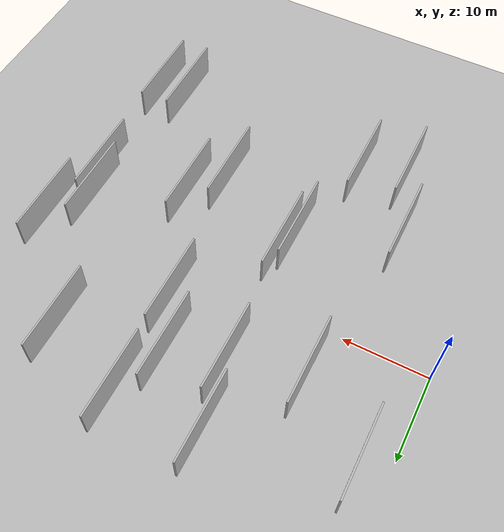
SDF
<?xml version="1.0" encoding="utf-8"?>

<sdf version="1.6">

   <world name="default">

      <gui fullscreen="0">

         <camera name="user_camera">

            <pose>-15 0 4.57585 0 0 0</pose>

            <view_controller>orbit</view_controller>

         </camera>

      </gui>

      <scene>

         <sky>

           <clouds>

             <speed>12</speed>

           </clouds>

         </sky>

         <ambient>0.4 0.4 0.4 1</ambient>

         <background>0.7 0.7 0.7 1</background>

         <shadows>1</shadows>

      </scene>

      <gravity>0 0 -9.8066</gravity>

      <magnetic_field>6e-06 2.3e-05 -4.2e-05</magnetic_field>

      <physics default="0" name="default_physics" type="ode">

         <ode>

            <solver>

               <type>quick</type>

               <iters>10</iters>

               <sor>1.0</sor>

               <use_dynamic_moi_rescaling>0</use_dynamic_moi_rescaling>

            </solver>

            <constraints>

               <cfm>0</cfm>

               <erp>0.2</erp>

               <contact_max_correcting_vel>100</contact_max_correcting_vel>

               <contact_surface_layer>0.001</contact_surface_layer>

            </constraints>

         </ode>

         <max_step_size>0.004</max_step_size>

         <real_time_factor>1</real_time_factor>

         <real_time_update_rate>250</real_time_update_rate>

      </physics>

      <light name="sun" type="directional">

         <cast_shadows>1</cast_shadows>

         <pose>0 0 10 0 0 0</pose>

         <diffuse>0.8 0.8 0.8 1</diffuse>

         <specular>0.2 0.2 0.2 1</specular>

         <attenuation>

            <range>1000</range>

            <constant>0.9</constant>

            <linear>0.01</linear>

            <quadratic>0.001</quadratic>

         </attenuation>

         <direction>-0.5 0.1 -0.9</direction>

      </light>

      <include>

         <name>ground_plane_1</name>

         <uri>model://HANNAS_ground_plane</uri>

         <pose>0 0 0  0 0 0</pose>

      </include>

      <include>

         <name>ground_plane_2</name>

         <uri>model://HANNAS_ground_plane</uri>

         <pose>100 0 0  0 0 0</pose>

      </include>

      <model name="HANNAS_wall_1">

         <static>1</static>

         <pose frame="">19.9486 -4.7746 5.0 0.000000 0.000000 1.570796</pose>

         <link name="link">

            <pose frame="">0 0 2.00 0 0 0</pose>

            <collision name="collision">

               <geometry>

                  <box>

                     <size>10.00 0.2 4.00</size>

                  </box>

               </geometry>

               <max_contacts>10</max_contacts>

               <surface>

                  <contact>

                     <ode/>

                  </contact>

                  <bounce/>

                  <friction>

                     <torsional>

                        <ode/>

                     </torsional>

                     <ode/>

                  </friction>

               </surface>

            </collision>

            <visual name="visual">

               <cast_shadows>0</cast_shadows>

               <geometry>

                  <box>

                     <size>10.00 0.2 4.00</size>

                  </box>

               </geometry>

               <material>

                  <script>

                     <uri>model://HANNAS_wall/materials/scripts</uri>

                     <uri>model://HANNAS_wall/materials/textures</uri>

                     <name>vrc/HANNAS_wall</name>

                  </script>

               </material>

            </visual>

            <self_collide>0</self_collide>

            <enable_wind>0</enable_wind>

            <kinematic>0</kinematic>

         </link>

      </model>

      <model name="HANNAS_wall_2">

         <static>1</static>

         <pose frame="">18.8930 10.1252 5.0 0.000000 0.000000 1.570796</pose>

         <link name="link">

            <pose frame="">0 0 2.00 0 0 0</pose>

            <collision name="collision">

               <geometry>

                  <box>

                     <size>10.00 0.2 4.00</size>

                  </box>

               </geometry>

               <max_contacts>10</max_contacts>

               <surface>

                  <contact>

                     <ode/>

                  </contact>

                  <bounce/>

                  <friction>

                     <torsional>

                        <ode/>

                     </torsional>

                     <ode/>

                  </friction>

               </surface>

            </collision>

            <visual name="visual">

               <cast_shadows>0</cast_shadows>

               <geometry>

                  <box>

                     <size>10.00 0.2 4.00</size>

                  </box>

               </geometry>

               <material>

                  <script>

                     <uri>model://HANNAS_wall/materials/scripts</uri>

                     <uri>model://HANNAS_wall/materials/textures</uri>

                     <name>vrc/HANNAS_wall</name>

                  </script>

               </material>

            </visual>

            <self_collide>0</self_collide>

            <enable_wind>0</enable_wind>

            <kinematic>0</kinematic>

         </link>

      </model>

      <model name="HANNAS_wall_3">

         <static>1</static>

         <pose frame="">29.3117 -10.4339 5.0 0.000000 0.000000 1.570796</pose>

         <link name="link">

            <pose frame="">0 0 2.00 0 0 0</pose>

            <collision name="collision">

               <geometry>

                  <box>

                     <size>10.00 0.2 4.00</size>

                  </box>

               </geometry>

               <max_contacts>10</max_contacts>

               <surface>

                  <contact>

                     <ode/>

                  </contact>

                  <bounce/>

                  <friction>

                     <torsional>

                        <ode/>

                     </torsional>

                     <ode/>

                  </friction>

               </surface>

            </collision>

            <visual name="visual">

               <cast_shadows>0</cast_shadows>

               <geometry>

                  <box>

                     <size>10.00 0.2 4.00</size>

                  </box>

               </geometry>

               <material>

                  <script>

                     <uri>model://HANNAS_wall/materials/scripts</uri>

                     <uri>model://HANNAS_wall/materials/textures</uri>

                     <name>vrc/HANNAS_wall</name>

                  </script>

               </material>

            </visual>

            <self_collide>0</self_collide>

            <enable_wind>0</enable_wind>

            <kinematic>0</kinematic>

         </link>

      </model>

      <model name="HANNAS_wall_4">

         <static>1</static>

         <pose frame="">42.7862 -4.7246 5.0 0.000000 0.000000 1.570796</pose>

         <link name="link">

            <pose frame="">0 0 2.00 0 0 0</pose>

            <collision name="collision">

               <geometry>

                  <box>

                     <size>10.00 0.2 4.00</size>

                  </box>

               </geometry>

               <max_contacts>10</max_contacts>

               <surface>

                  <contact>

                     <ode/>

                  </contact>

                  <bounce/>

                  <friction>

                     <torsional>

                        <ode/>

                     </torsional>

                     <ode/>

                  </friction>

               </surface>

            </collision>

            <visual name="visual">

               <cast_shadows>0</cast_shadows>

               <geometry>

                  <box>

                     <size>10.00 0.2 4.00</size>

                  </box>

               </geometry>

               <material>

                  <script>

                     <uri>model://HANNAS_wall/materials/scripts</uri>

                     <uri>model://HANNAS_wall/materials/textures</uri>

                     <name>vrc/HANNAS_wall</name>

                  </script>

               </material>

            </visual>

            <self_collide>0</self_collide>

            <enable_wind>0</enable_wind>

            <kinematic>0</kinematic>

         </link>

      </model>

      <model name="HANNAS_wall_5">

         <static>1</static>

         <pose frame="">19.0586 -6.8090 5.0 0.000000 0.000000 1.570796</pose>

         <link name="link">

            <pose frame="">0 0 2.00 0 0 0</pose>

            <collision name="collision">

               <geometry>

                  <box>

                     <size>10.00 0.2 4.00</size>

                  </box>

               </geometry>

               <max_contacts>10</max_contacts>

               <surface>

                  <contact>

                     <ode/>

                  </contact>

                  <bounce/>

                  <friction>

                     <torsional>

                        <ode/>

                     </torsional>

                     <ode/>

                  </friction>

               </surface>

            </collision>

            <visual name="visual">

               <cast_shadows>0</cast_shadows>

               <geometry>

                  <box>

                     <size>10.00 0.2 4.00</size>

                  </box>

               </geometry>

               <material>

                  <script>

                     <uri>model://HANNAS_wall/materials/scripts</uri>

                     <uri>model://HANNAS_wall/materials/textures</uri>

                     <name>vrc/HANNAS_wall</name>

                  </script>

               </material>

            </visual>

            <self_collide>0</self_collide>

            <enable_wind>0</enable_wind>

            <kinematic>0</kinematic>

         </link>

      </model>

      <model name="HANNAS_wall_6">

         <static>1</static>

         <pose frame="">41.8627 -1.3553 5.0 0.000000 0.000000 1.570796</pose>

         <link name="link">

            <pose frame="">0 0 2.00 0 0 0</pose>

            <collision name="collision">

               <geometry>

                  <box>

                     <size>10.00 0.2 4.00</size>

                  </box>

               </geometry>

               <max_contacts>10</max_contacts>

               <surface>

                  <contact>

                     <ode/>

                  </contact>

                  <bounce/>

                  <friction>

                     <torsional>

                        <ode/>

                     </torsional>

                     <ode/>

                  </friction>

               </surface>

            </collision>

            <visual name="visual">

               <cast_shadows>0</cast_shadows>

               <geometry>

                  <box>

                     <size>10.00 0.2 4.00</size>

                  </box>

               </geometry>

               <material>

                  <script>

                     <uri>model://HANNAS_wall/materials/scripts</uri>

                     <uri>model://HANNAS_wall/materials/textures</uri>

                     <name>vrc/HANNAS_wall</name>

                  </script>

               </material>

            </visual>

            <self_collide>0</self_collide>

            <enable_wind>0</enable_wind>

            <kinematic>0</kinematic>

         </link>

      </model>

      <model name="HANNAS_wall_7">

         <static>1</static>

         <pose frame="">24.8526 11.7892 5.0 0.000000 0.000000 1.570796</pose>

         <link name="link">

            <pose frame="">0 0 2.00 0 0 0</pose>

            <collision name="collision">

               <geometry>

                  <box>

                     <size>10.00 0.2 4.00</size>

                  </box>

               </geometry>

               <max_contacts>10</max_contacts>

               <surface>

                  <contact>

                     <ode/>

                  </contact>

                  <bounce/>

                  <friction>

                     <torsional>

                        <ode/>

                     </torsional>

                     <ode/>

                  </friction>

               </surface>

            </collision>

            <visual name="visual">

               <cast_shadows>0</cast_shadows>

               <geometry>

                  <box>

                     <size>10.00 0.2 4.00</size>

                  </box>

               </geometry>

               <material>

                  <script>

                     <uri>model://HANNAS_wall/materials/scripts</uri>

                     <uri>model://HANNAS_wall/materials/textures</uri>

                     <name>vrc/HANNAS_wall</name>

                  </script>

               </material>

            </visual>

            <self_collide>0</self_collide>

            <enable_wind>0</enable_wind>

            <kinematic>0</kinematic>

         </link>

      </model>

      <model name="HANNAS_wall_8">

         <static>1</static>

         <pose frame="">8.8093 -11.8002 5.0 0.000000 0.000000 1.570796</pose>

         <link name="link">

            <pose frame="">0 0 2.00 0 0 0</pose>

            <collision name="collision">

               <geometry>

                  <box>

                     <size>10.00 0.2 4.00</size>

                  </box>

               </geometry>

               <max_contacts>10</max_contacts>

               <surface>

                  <contact>

                     <ode/>

                  </contact>

                  <bounce/>

                  <friction>

                     <torsional>

                        <ode/>

                     </torsional>

                     <ode/>

                  </friction>

               </surface>

            </collision>

            <visual name="visual">

               <cast_shadows>0</cast_shadows>

               <geometry>

                  <box>

                     <size>10.00 0.2 4.00</size>

                  </box>

               </geometry>

               <material>

                  <script>

                     <uri>model://HANNAS_wall/materials/scripts</uri>

                     <uri>model://HANNAS_wall/materials/textures</uri>

                     <name>vrc/HANNAS_wall</name>

                  </script>

               </material>

            </visual>

            <self_collide>0</self_collide>

            <enable_wind>0</enable_wind>

            <kinematic>0</kinematic>

         </link>

      </model>

      <model name="HANNAS_wall_9">

         <static>1</static>

         <pose frame="">11.1776 -19.9244 5.0 0.000000 0.000000 1.570796</pose>

         <link name="link">

            <pose frame="">0 0 2.00 0 0 0</pose>

            <collision name="collision">

               <geometry>

                  <box>

                     <size>10.00 0.2 4.00</size>

                  </box>

               </geometry>

               <max_contacts>10</max_contacts>

               <surface>

                  <contact>

                     <ode/>

                  </contact>

                  <bounce/>

                  <friction>

                     <torsional>

                        <ode/>

                     </torsional>

                     <ode/>

                  </friction>

               </surface>

            </collision>

            <visual name="visual">

               <cast_shadows>0</cast_shadows>

               <geometry>

                  <box>

                     <size>10.00 0.2 4.00</size>

                  </box>

               </geometry>

               <material>

                  <script>

                     <uri>model://HANNAS_wall/materials/scripts</uri>

                     <uri>model://HANNAS_wall/materials/textures</uri>

                     <name>vrc/HANNAS_wall</name>

                  </script>

               </material>

            </visual>

            <self_collide>0</self_collide>

            <enable_wind>0</enable_wind>

            <kinematic>0</kinematic>

         </link>

      </model>

      <model name="HANNAS_wall_10">

         <static>1</static>

         <pose frame="">39.8843 -19.5996 5.0 0.000000 0.000000 1.570796</pose>

         <link name="link">

            <pose frame="">0 0 2.00 0 0 0</pose>

            <collision name="collision">

               <geometry>

                  <box>

                     <size>10.00 0.2 4.00</size>

                  </box>

               </geometry>

               <max_contacts>10</max_contacts>

               <surface>

                  <contact>

                     <ode/>

                  </contact>

                  <bounce/>

                  <friction>

                     <torsional>

                        <ode/>

                     </torsional>

                     <ode/>

                  </friction>

               </surface>

            </collision>

            <visual name="visual">

               <cast_shadows>0</cast_shadows>

               <geometry>

                  <box>

                     <size>10.00 0.2 4.00</size>

                  </box>

               </geometry>

               <material>

                  <script>

                     <uri>model://HANNAS_wall/materials/scripts</uri>

                     <uri>model://HANNAS_wall/materials/textures</uri>

                     <name>vrc/HANNAS_wall</name>

                  </script>

               </material>

            </visual>

            <self_collide>0</self_collide>

            <enable_wind>0</enable_wind>

            <kinematic>0</kinematic>

         </link>

      </model>

      <model name="HANNAS_wall_11">

         <static>1</static>

         <pose frame="">3.3734 13.6194 5.0 0.000000 0.000000 1.570796</pose>

         <link name="link">

            <pose frame="">0 0 2.00 0 0 0</pose>

            <collision name="collision">

               <geometry>

                  <box>

                     <size>10.00 0.2 4.00</size>

                  </box>

               </geometry>

               <max_contacts>10</max_contacts>

               <surface>

                  <contact>

                     <ode/>

                  </contact>

                  <bounce/>

                  <friction>

                     <torsional>

                        <ode/>

                     </torsional>

                     <ode/>

                  </friction>

               </surface>

            </collision>

            <visual name="visual">

               <cast_shadows>0</cast_shadows>

               <geometry>

                  <box>

                     <size>10.00 0.2 4.00</size>

                  </box>

               </geometry>

               <material>

                  <script>

                     <uri>model://HANNAS_wall/materials/scripts</uri>

                     <uri>model://HANNAS_wall/materials/textures</uri>

                     <name>vrc/HANNAS_wall</name>

                  </script>

               </material>

            </visual>

            <self_collide>0</self_collide>

            <enable_wind>0</enable_wind>

            <kinematic>0</kinematic>

         </link>

      </model>

      <model name="HANNAS_wall_12">

         <static>1</static>

         <pose frame="">36.1119 14.2864 5.0 0.000000 0.000000 1.570796</pose>

         <link name="link">

            <pose frame="">0 0 2.00 0 0 0</pose>

            <collision name="collision">

               <geometry>

                  <box>

                     <size>10.00 0.2 4.00</size>

                  </box>

               </geometry>

               <max_contacts>10</max_contacts>

               <surface>

                  <contact>

                     <ode/>

                  </contact>

                  <bounce/>

                  <friction>

                     <torsional>

                        <ode/>

                     </torsional>

                     <ode/>

                  </friction>

               </surface>

            </collision>

            <visual name="visual">

               <cast_shadows>0</cast_shadows>

               <geometry>

                  <box>

                     <size>10.00 0.2 4.00</size>

                  </box>

               </geometry>

               <material>

                  <script>

                     <uri>model://HANNAS_wall/materials/scripts</uri>

                     <uri>model://HANNAS_wall/materials/textures</uri>

                     <name>vrc/HANNAS_wall</name>

                  </script>

               </material>

            </visual>

            <self_collide>0</self_collide>

            <enable_wind>0</enable_wind>

            <kinematic>0</kinematic>

         </link>

      </model>

      <model name="HANNAS_wall_13">

         <static>1</static>

         <pose frame="">43.1384 -19.3971 5.0 0.000000 0.000000 1.570796</pose>

         <link name="link">

            <pose frame="">0 0 2.00 0 0 0</pose>

            <collision name="collision">

               <geometry>

                  <box>

                     <size>10.00 0.2 4.00</size>

                  </box>

               </geometry>

               <max_contacts>10</max_contacts>

               <surface>

                  <contact>

                     <ode/>

                  </contact>

                  <bounce/>

                  <friction>

                     <torsional>

                        <ode/>

                     </torsional>

                     <ode/>

                  </friction>

               </surface>

            </collision>

            <visual name="visual">

               <cast_shadows>0</cast_shadows>

               <geometry>

                  <box>

                     <size>10.00 0.2 4.00</size>

                  </box>

               </geometry>

               <material>

                  <script>

                     <uri>model://HANNAS_wall/materials/scripts</uri>

                     <uri>model://HANNAS_wall/materials/textures</uri>

                     <name>vrc/HANNAS_wall</name>

                  </script>

               </material>

            </visual>

            <self_collide>0</self_collide>

            <enable_wind>0</enable_wind>

            <kinematic>0</kinematic>

         </link>

      </model>

      <model name="HANNAS_wall_14">

         <static>1</static>

         <pose frame="">11.1633 7.7642 5.0 0.000000 0.000000 1.570796</pose>

         <link name="link">

            <pose frame="">0 0 2.00 0 0 0</pose>

            <collision name="collision">

               <geometry>

                  <box>

                     <size>10.00 0.2 4.00</size>

                  </box>

               </geometry>

               <max_contacts>10</max_contacts>

               <surface>

                  <contact>

                     <ode/>

                  </contact>

                  <bounce/>

                  <friction>

                     <torsional>

                        <ode/>

                     </torsional>

                     <ode/>

                  </friction>

               </surface>

            </collision>

            <visual name="visual">

               <cast_shadows>0</cast_shadows>

               <geometry>

                  <box>

                     <size>10.00 0.2 4.00</size>

                  </box>

               </geometry>

               <material>

                  <script>

                     <uri>model://HANNAS_wall/materials/scripts</uri>

                     <uri>model://HANNAS_wall/materials/textures</uri>

                     <name>vrc/HANNAS_wall</name>

                  </script>

               </material>

            </visual>

            <self_collide>0</self_collide>

            <enable_wind>0</enable_wind>

            <kinematic>0</kinematic>

         </link>

      </model>

      <model name="HANNAS_wall_15">

         <static>1</static>

         <pose frame="">45.0238 3.0104 5.0 0.000000 0.000000 1.570796</pose>

         <link name="link">

            <pose frame="">0 0 2.00 0 0 0</pose>

            <collision name="collision">

               <geometry>

                  <box>

                     <size>10.00 0.2 4.00</size>

                  </box>

               </geometry>

               <max_contacts>10</max_contacts>

               <surface>

                  <contact>

                     <ode/>

                  </contact>

                  <bounce/>

                  <friction>

                     <torsional>

                        <ode/>

                     </torsional>

                     <ode/>

                  </friction>

               </surface>

            </collision>

            <visual name="visual">

               <cast_shadows>0</cast_shadows>

               <geometry>

                  <box>

                     <size>10.00 0.2 4.00</size>

                  </box>

               </geometry>

               <material>

                  <script>

                     <uri>model://HANNAS_wall/materials/scripts</uri>

                     <uri>model://HANNAS_wall/materials/textures</uri>

                     <name>vrc/HANNAS_wall</name>

                  </script>

               </material>

            </visual>

            <self_collide>0</self_collide>

            <enable_wind>0</enable_wind>

            <kinematic>0</kinematic>

         </link>

      </model>

      <model name="HANNAS_wall_16">

         <static>1</static>

         <pose frame="">27.1819 17.6710 5.0 0.000000 0.000000 1.570796</pose>

         <link name="link">

            <pose frame="">0 0 2.00 0 0 0</pose>

            <collision name="collision">

               <geometry>

                  <box>

                     <size>10.00 0.2 4.00</size>

                  </box>

               </geometry>

               <max_contacts>10</max_contacts>

               <surface>

                  <contact>

                     <ode/>

                  </contact>

                  <bounce/>

                  <friction>

                     <torsional>

                        <ode/>

                     </torsional>

                     <ode/>

                  </friction>

               </surface>

            </collision>

            <visual name="visual">

               <cast_shadows>0</cast_shadows>

               <geometry>

                  <box>

                     <size>10.00 0.2 4.00</size>

                  </box>

               </geometry>

               <material>

                  <script>

                     <uri>model://HANNAS_wall/materials/scripts</uri>

                     <uri>model://HANNAS_wall/materials/textures</uri>

                     <name>vrc/HANNAS_wall</name>

                  </script>

               </material>

            </visual>

            <self_collide>0</self_collide>

            <enable_wind>0</enable_wind>

            <kinematic>0</kinematic>

         </link>

      </model>

      <model name="HANNAS_wall_17">

         <static>1</static>

         <pose frame="">32.5133 -6.7537 5.0 0.000000 0.000000 1.570796</pose>

         <link name="link">

            <pose frame="">0 0 2.00 0 0 0</pose>

            <collision name="collision">

               <geometry>

                  <box>

                     <size>10.00 0.2 4.00</size>

                  </box>

               </geometry>

               <max_contacts>10</max_contacts>

               <surface>

                  <contact>

                     <ode/>

                  </contact>

                  <bounce/>

                  <friction>

                     <torsional>

                        <ode/>

                     </torsional>

                     <ode/>

                  </friction>

               </surface>

            </collision>

            <visual name="visual">

               <cast_shadows>0</cast_shadows>

               <geometry>

                  <box>

                     <size>10.00 0.2 4.00</size>

                  </box>

               </geometry>

               <material>

                  <script>

                     <uri>model://HANNAS_wall/materials/scripts</uri>

                     <uri>model://HANNAS_wall/materials/textures</uri>

                     <name>vrc/HANNAS_wall</name>

                  </script>

               </material>

            </visual>

            <self_collide>0</self_collide>

            <enable_wind>0</enable_wind>

            <kinematic>0</kinematic>

         </link>

      </model>

      <model name="HANNAS_wall_18">

         <static>1</static>

         <pose frame="">17.6224 17.3749 5.0 0.000000 0.000000 1.570796</pose>

         <link name="link">

            <pose frame="">0 0 2.00 0 0 0</pose>

            <collision name="collision">

               <geometry>

                  <box>

                     <size>10.00 0.2 4.00</size>

                  </box>

               </geometry>

               <max_contacts>10</max_contacts>

               <surface>

                  <contact>

                     <ode/>

                  </contact>

                  <bounce/>

                  <friction>

                     <torsional>

                        <ode/>

                     </torsional>

                     <ode/>

                  </friction>

               </surface>

            </collision>

            <visual name="visual">

               <cast_shadows>0</cast_shadows>

               <geometry>

                  <box>

                     <size>10.00 0.2 4.00</size>

                  </box>

               </geometry>

               <material>

                  <script>

                     <uri>model://HANNAS_wall/materials/scripts</uri>

                     <uri>model://HANNAS_wall/materials/textures</uri>

                     <name>vrc/HANNAS_wall</name>

                  </script>

               </material>

            </visual>

            <self_collide>0</self_collide>

            <enable_wind>0</enable_wind>

            <kinematic>0</kinematic>

         </link>

      </model>

      <model name="HANNAS_wall_19">

         <static>1</static>

         <pose frame="">16.2223 -18.4495 5.0 0.000000 0.000000 1.570796</pose>

         <link name="link">

            <pose frame="">0 0 2.00 0 0 0</pose>

            <collision name="collision">

               <geometry>

                  <box>

                     <size>10.00 0.2 4.00</size>

                  </box>

               </geometry>

               <max_contacts>10</max_contacts>

               <surface>

                  <contact>

                     <ode/>

                  </contact>

                  <bounce/>

                  <friction>

                     <torsional>

                        <ode/>

                     </torsional>

                     <ode/>

                  </friction>

               </surface>

            </collision>

            <visual name="visual">

               <cast_shadows>0</cast_shadows>

               <geometry>

                  <box>

                     <size>10.00 0.2 4.00</size>

                  </box>

               </geometry>

               <material>

                  <script>

                     <uri>model://HANNAS_wall/materials/scripts</uri>

                     <uri>model://HANNAS_wall/materials/textures</uri>

                     <name>vrc/HANNAS_wall</name>

                  </script>

               </material>

            </visual>

            <self_collide>0</self_collide>

            <enable_wind>0</enable_wind>

            <kinematic>0</kinematic>

         </link>

      </model>

      <model name="HANNAS_wall_20">

         <static>1</static>

         <pose frame="">27.4145 6.0340 5.0 0.000000 0.000000 1.570796</pose>

         <link name="link">

            <pose frame="">0 0 2.00 0 0 0</pose>

            <collision name="collision">

               <geometry>

                  <box>

                     <size>10.00 0.2 4.00</size>

                  </box>

               </geometry>

               <max_contacts>10</max_contacts>

               <surface>

                  <contact>

                     <ode/>

                  </contact>

                  <bounce/>

                  <friction>

                     <torsional>

                        <ode/>

                     </torsional>

                     <ode/>

                  </friction>

               </surface>

            </collision>

            <visual name="visual">

               <cast_shadows>0</cast_shadows>

               <geometry>

                  <box>

                     <size>10.00 0.2 4.00</size>

                  </box>

               </geometry>

               <material>

                  <script>

                     <uri>model://HANNAS_wall/materials/scripts</uri>

                     <uri>model://HANNAS_wall/materials/textures</uri>

                     <name>vrc/HANNAS_wall</name>

                  </script>

               </material>

            </visual>

            <self_collide>0</self_collide>

            <enable_wind>0</enable_wind>

            <kinematic>0</kinematic>

         </link>

      </model>

   </world>

</sdf>

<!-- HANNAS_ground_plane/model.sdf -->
<sdf version="1.4">
<model name="HANNAS_ground_plane">
  <static>true</static>
    <link name="link">
      <collision name="collision">
        <geometry>
          <plane>
            <normal>0 0 1</normal>
            <size>1000 1000</size>
          </plane>
        </geometry>
        <surface>
          <friction>
            <ode>
              <mu>100</mu>
              <mu2>50</mu2>
            </ode>
          </friction>
        </surface>
      </collision>
      <visual name="visual">
        <cast_shadows>false</cast_shadows>
        <geometry>
          <plane>
            <normal>0 0 1</normal>
            <size>1000 1000</size>
          </plane>
        </geometry>
        <material>
          <script>
            <uri>model://HANNAS_ground_plane/materials/scripts/HANNAS_ground_plane.material</uri>
	    <uri>model://HANNAS_ground_plane/materials/textures</uri>
            <name>HANNASGroundPlane/Image</name>
          </script>
        </material>
      </visual>
    </link>
  </model>
</sdf>
